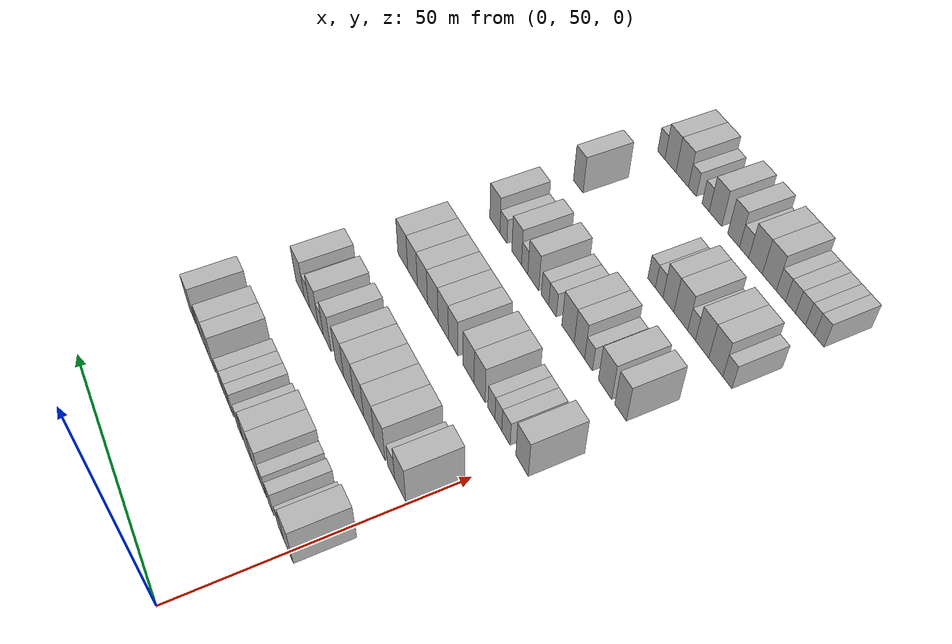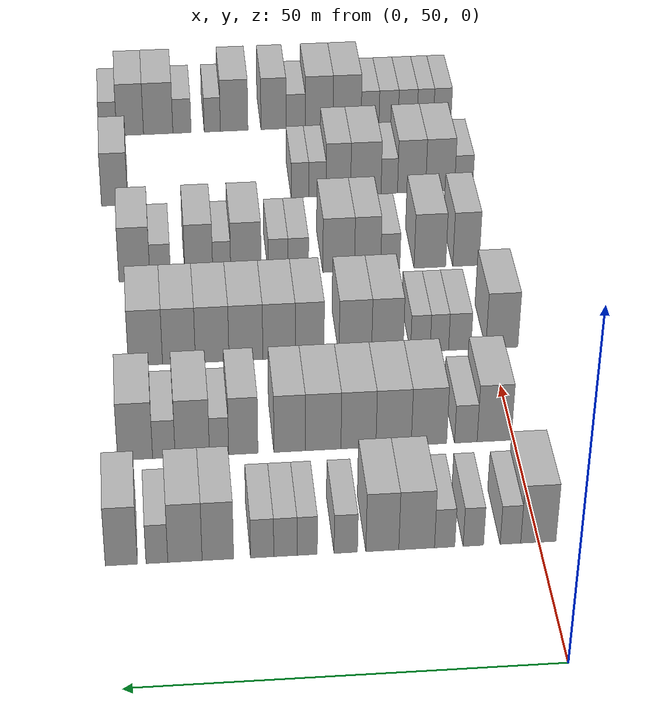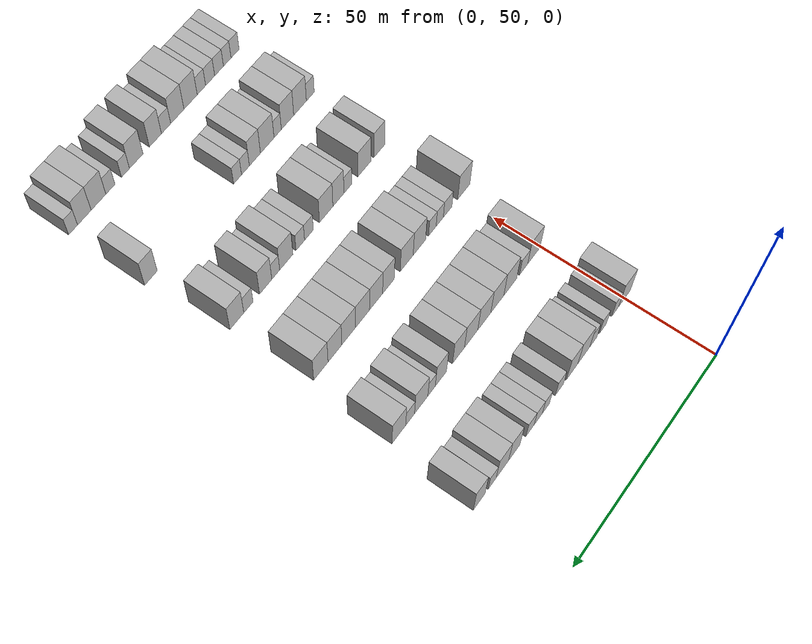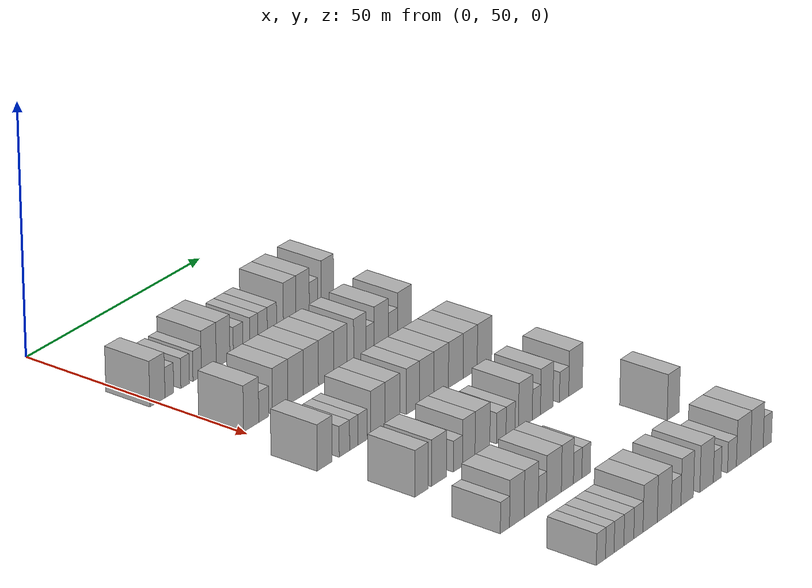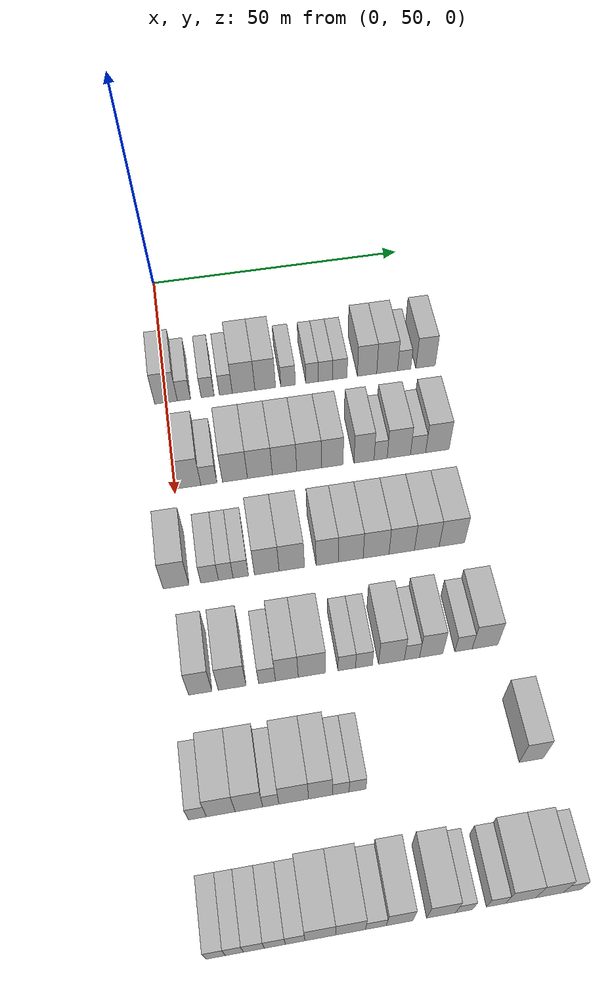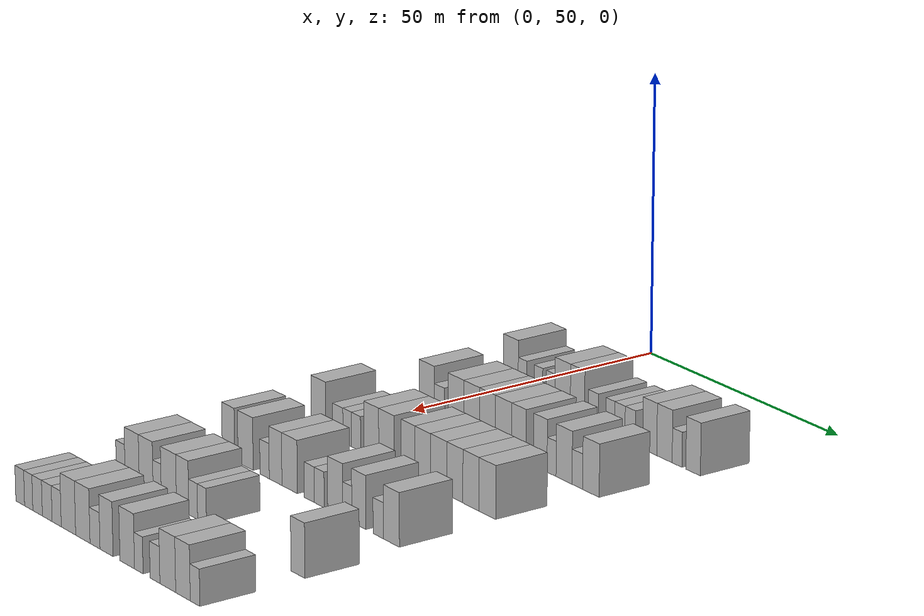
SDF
<sdf version="1.6">
 <world name="default">
  <model name="building_98">
   <static>1</static>
   <pose>25.0000 50.0883 0 0.000000 0.000000 0.000000</pose>
   <link name="link">
    <pose>0 0 4.50 0 0 0</pose>
    <collision name="collision"><geometry><box><size>10.0000 4.2511 9.0000</size></box></geometry></collision>
    <visual name="visual">
     <cast_shadows>0</cast_shadows>
     <geometry><box><size>10.0000 4.2511 9.0000</size></box></geometry>
     <material>
      <script>
       <uri>model://HANNAS_wall/materials/scripts</uri>
       <uri>model://HANNAS_wall/materials/textures</uri>
       <name>vrc/HANNAS_wall</name>
      </script>
     </material>
    </visual>
   </link>
  </model>
  <model name="building_99">
   <static>1</static>
   <pose>25.0000 53.4505 0 0.000000 0.000000 0.000000</pose>
   <link name="link">
    <pose>0 0 3.00 0 0 0</pose>
    <collision name="collision"><geometry><box><size>10.0000 2.4731 6.0000</size></box></geometry></collision>
    <visual name="visual">
     <cast_shadows>0</cast_shadows>
     <geometry><box><size>10.0000 2.4731 6.0000</size></box></geometry>
     <material>
      <script>
       <uri>model://HANNAS_wall/materials/scripts</uri>
       <uri>model://HANNAS_wall/materials/textures</uri>
       <name>vrc/HANNAS_wall</name>
      </script>
     </material>
    </visual>
   </link>
  </model>
  <model name="building_100">
   <static>1</static>
   <pose>25.0000 57.9115 0 0.000000 0.000000 0.000000</pose>
   <link name="link">
    <pose>0 0 3.00 0 0 0</pose>
    <collision name="collision"><geometry><box><size>10.0000 2.4489 6.0000</size></box></geometry></collision>
    <visual name="visual">
     <cast_shadows>0</cast_shadows>
     <geometry><box><size>10.0000 2.4489 6.0000</size></box></geometry>
     <material>
      <script>
       <uri>model://HANNAS_wall/materials/scripts</uri>
       <uri>model://HANNAS_wall/materials/textures</uri>
       <name>vrc/HANNAS_wall</name>
      </script>
     </material>
    </visual>
   </link>
  </model>
  <model name="building_101">
   <static>1</static>
   <pose>25.0000 61.3534 0 0.000000 0.000000 0.000000</pose>
   <link name="link">
    <pose>0 0 3.00 0 0 0</pose>
    <collision name="collision"><geometry><box><size>10.0000 2.4351 6.0000</size></box></geometry></collision>
    <visual name="visual">
     <cast_shadows>0</cast_shadows>
     <geometry><box><size>10.0000 2.4351 6.0000</size></box></geometry>
     <material>
      <script>
       <uri>model://HANNAS_wall/materials/scripts</uri>
       <uri>model://HANNAS_wall/materials/textures</uri>
       <name>vrc/HANNAS_wall</name>
      </script>
     </material>
    </visual>
   </link>
  </model>
  <model name="building_102">
   <static>1</static>
   <pose>25.0000 64.7092 0 0.000000 0.000000 0.000000</pose>
   <link name="link">
    <pose>0 0 4.50 0 0 0</pose>
    <collision name="collision"><geometry><box><size>10.0000 4.2765 9.0000</size></box></geometry></collision>
    <visual name="visual">
     <cast_shadows>0</cast_shadows>
     <geometry><box><size>10.0000 4.2765 9.0000</size></box></geometry>
     <material>
      <script>
       <uri>model://HANNAS_wall/materials/scripts</uri>
       <uri>model://HANNAS_wall/materials/textures</uri>
       <name>vrc/HANNAS_wall</name>
      </script>
     </material>
    </visual>
   </link>
  </model>
  <model name="building_103">
   <static>1</static>
   <pose>25.0000 68.8168 0 0.000000 0.000000 0.000000</pose>
   <link name="link">
    <pose>0 0 4.50 0 0 0</pose>
    <collision name="collision"><geometry><box><size>10.0000 3.9386 9.0000</size></box></geometry></collision>
    <visual name="visual">
     <cast_shadows>0</cast_shadows>
     <geometry><box><size>10.0000 3.9386 9.0000</size></box></geometry>
     <material>
      <script>
       <uri>model://HANNAS_wall/materials/scripts</uri>
       <uri>model://HANNAS_wall/materials/textures</uri>
       <name>vrc/HANNAS_wall</name>
      </script>
     </material>
    </visual>
   </link>
  </model>
  <model name="building_104">
   <static>1</static>
   <pose>25.0000 73.1837 0 0.000000 0.000000 0.000000</pose>
   <link name="link">
    <pose>0 0 3.00 0 0 0</pose>
    <collision name="collision"><geometry><box><size>10.0000 2.7952 6.0000</size></box></geometry></collision>
    <visual name="visual">
     <cast_shadows>0</cast_shadows>
     <geometry><box><size>10.0000 2.7952 6.0000</size></box></geometry>
     <material>
      <script>
       <uri>model://HANNAS_wall/materials/scripts</uri>
       <uri>model://HANNAS_wall/materials/textures</uri>
       <name>vrc/HANNAS_wall</name>
      </script>
     </material>
    </visual>
   </link>
  </model>
  <model name="building_105">
   <static>1</static>
   <pose>25.0000 77.7830 0 0.000000 0.000000 0.000000</pose>
   <link name="link">
    <pose>0 0 3.00 0 0 0</pose>
    <collision name="collision"><geometry><box><size>10.0000 2.4035 6.0000</size></box></geometry></collision>
    <visual name="visual">
     <cast_shadows>0</cast_shadows>
     <geometry><box><size>10.0000 2.4035 6.0000</size></box></geometry>
     <material>
      <script>
       <uri>model://HANNAS_wall/materials/scripts</uri>
       <uri>model://HANNAS_wall/materials/textures</uri>
       <name>vrc/HANNAS_wall</name>
      </script>
     </material>
    </visual>
   </link>
  </model>
  <model name="building_106">
   <static>1</static>
   <pose>25.0000 80.3705 0 0.000000 0.000000 0.000000</pose>
   <link name="link">
    <pose>0 0 3.00 0 0 0</pose>
    <collision name="collision"><geometry><box><size>10.0000 2.7715 6.0000</size></box></geometry></collision>
    <visual name="visual">
     <cast_shadows>0</cast_shadows>
     <geometry><box><size>10.0000 2.7715 6.0000</size></box></geometry>
     <material>
      <script>
       <uri>model://HANNAS_wall/materials/scripts</uri>
       <uri>model://HANNAS_wall/materials/textures</uri>
       <name>vrc/HANNAS_wall</name>
      </script>
     </material>
    </visual>
   </link>
  </model>
  <model name="building_107">
   <static>1</static>
   <pose>25.0000 83.1354 0 0.000000 0.000000 0.000000</pose>
   <link name="link">
    <pose>0 0 3.00 0 0 0</pose>
    <collision name="collision"><geometry><box><size>10.0000 2.7583 6.0000</size></box></geometry></collision>
    <visual name="visual">
     <cast_shadows>0</cast_shadows>
     <geometry><box><size>10.0000 2.7583 6.0000</size></box></geometry>
     <material>
      <script>
       <uri>model://HANNAS_wall/materials/scripts</uri>
       <uri>model://HANNAS_wall/materials/textures</uri>
       <name>vrc/HANNAS_wall</name>
      </script>
     </material>
    </visual>
   </link>
  </model>
  <model name="building_108">
   <static>1</static>
   <pose>25.0000 88.3816 0 0.000000 0.000000 0.000000</pose>
   <link name="link">
    <pose>0 0 4.50 0 0 0</pose>
    <collision name="collision"><geometry><box><size>10.0000 3.7342 9.0000</size></box></geometry></collision>
    <visual name="visual">
     <cast_shadows>0</cast_shadows>
     <geometry><box><size>10.0000 3.7342 9.0000</size></box></geometry>
     <material>
      <script>
       <uri>model://HANNAS_wall/materials/scripts</uri>
       <uri>model://HANNAS_wall/materials/textures</uri>
       <name>vrc/HANNAS_wall</name>
      </script>
     </material>
    </visual>
   </link>
  </model>
  <model name="building_109">
   <static>1</static>
   <pose>25.0000 92.2741 0 0.000000 0.000000 0.000000</pose>
   <link name="link">
    <pose>0 0 4.50 0 0 0</pose>
    <collision name="collision"><geometry><box><size>10.0000 4.0507 9.0000</size></box></geometry></collision>
    <visual name="visual">
     <cast_shadows>0</cast_shadows>
     <geometry><box><size>10.0000 4.0507 9.0000</size></box></geometry>
     <material>
      <script>
       <uri>model://HANNAS_wall/materials/scripts</uri>
       <uri>model://HANNAS_wall/materials/textures</uri>
       <name>vrc/HANNAS_wall</name>
      </script>
     </material>
    </visual>
   </link>
  </model>
  <model name="building_110">
   <static>1</static>
   <pose>25.0000 95.5857 0 0.000000 0.000000 0.000000</pose>
   <link name="link">
    <pose>0 0 3.00 0 0 0</pose>
    <collision name="collision"><geometry><box><size>10.0000 2.5726 6.0000</size></box></geometry></collision>
    <visual name="visual">
     <cast_shadows>0</cast_shadows>
     <geometry><box><size>10.0000 2.5726 6.0000</size></box></geometry>
     <material>
      <script>
       <uri>model://HANNAS_wall/materials/scripts</uri>
       <uri>model://HANNAS_wall/materials/textures</uri>
       <name>vrc/HANNAS_wall</name>
      </script>
     </material>
    </visual>
   </link>
  </model>
  <model name="building_111">
   <static>1</static>
   <pose>25.0000 99.7679 0 0.000000 0.000000 0.000000</pose>
   <link name="link">
    <pose>0 0 4.50 0 0 0</pose>
    <collision name="collision"><geometry><box><size>10.0000 3.7919 9.0000</size></box></geometry></collision>
    <visual name="visual">
     <cast_shadows>0</cast_shadows>
     <geometry><box><size>10.0000 3.7919 9.0000</size></box></geometry>
     <material>
      <script>
       <uri>model://HANNAS_wall/materials/scripts</uri>
       <uri>model://HANNAS_wall/materials/textures</uri>
       <name>vrc/HANNAS_wall</name>
      </script>
     </material>
    </visual>
   </link>
  </model>
  <model name="building_271">
   <static>1</static>
   <pose>44.0000 52.5273 0 0.000000 0.000000 0.000000</pose>
   <link name="link">
    <pose>0 0 4.50 0 0 0</pose>
    <collision name="collision"><geometry><box><size>10.0000 4.3401 9.0000</size></box></geometry></collision>
    <visual name="visual">
     <cast_shadows>0</cast_shadows>
     <geometry><box><size>10.0000 4.3401 9.0000</size></box></geometry>
     <material>
      <script>
       <uri>model://HANNAS_wall/materials/scripts</uri>
       <uri>model://HANNAS_wall/materials/textures</uri>
       <name>vrc/HANNAS_wall</name>
      </script>
     </material>
    </visual>
   </link>
  </model>
  <model name="building_272">
   <static>1</static>
   <pose>44.0000 56.1313 0 0.000000 0.000000 0.000000</pose>
   <link name="link">
    <pose>0 0 3.00 0 0 0</pose>
    <collision name="collision"><geometry><box><size>10.0000 2.8679 6.0000</size></box></geometry></collision>
    <visual name="visual">
     <cast_shadows>0</cast_shadows>
     <geometry><box><size>10.0000 2.8679 6.0000</size></box></geometry>
     <material>
      <script>
       <uri>model://HANNAS_wall/materials/scripts</uri>
       <uri>model://HANNAS_wall/materials/textures</uri>
       <name>vrc/HANNAS_wall</name>
      </script>
     </material>
    </visual>
   </link>
  </model>
  <model name="building_273">
   <static>1</static>
   <pose>44.0000 60.8100 0 0.000000 0.000000 0.000000</pose>
   <link name="link">
    <pose>0 0 4.50 0 0 0</pose>
    <collision name="collision"><geometry><box><size>10.0000 4.4895 9.0000</size></box></geometry></collision>
    <visual name="visual">
     <cast_shadows>0</cast_shadows>
     <geometry><box><size>10.0000 4.4895 9.0000</size></box></geometry>
     <material>
      <script>
       <uri>model://HANNAS_wall/materials/scripts</uri>
       <uri>model://HANNAS_wall/materials/textures</uri>
       <name>vrc/HANNAS_wall</name>
      </script>
     </material>
    </visual>
   </link>
  </model>
  <model name="building_274">
   <static>1</static>
   <pose>44.0000 65.2912 0 0.000000 0.000000 0.000000</pose>
   <link name="link">
    <pose>0 0 4.50 0 0 0</pose>
    <collision name="collision"><geometry><box><size>10.0000 4.4730 9.0000</size></box></geometry></collision>
    <visual name="visual">
     <cast_shadows>0</cast_shadows>
     <geometry><box><size>10.0000 4.4730 9.0000</size></box></geometry>
     <material>
      <script>
       <uri>model://HANNAS_wall/materials/scripts</uri>
       <uri>model://HANNAS_wall/materials/textures</uri>
       <name>vrc/HANNAS_wall</name>
      </script>
     </material>
    </visual>
   </link>
  </model>
  <model name="building_275">
   <static>1</static>
   <pose>44.0000 69.7362 0 0.000000 0.000000 0.000000</pose>
   <link name="link">
    <pose>0 0 4.50 0 0 0</pose>
    <collision name="collision"><geometry><box><size>10.0000 4.4169 9.0000</size></box></geometry></collision>
    <visual name="visual">
     <cast_shadows>0</cast_shadows>
     <geometry><box><size>10.0000 4.4169 9.0000</size></box></geometry>
     <material>
      <script>
       <uri>model://HANNAS_wall/materials/scripts</uri>
       <uri>model://HANNAS_wall/materials/textures</uri>
       <name>vrc/HANNAS_wall</name>
      </script>
     </material>
    </visual>
   </link>
  </model>
  <model name="building_276">
   <static>1</static>
   <pose>44.0000 74.1919 0 0.000000 0.000000 0.000000</pose>
   <link name="link">
    <pose>0 0 4.50 0 0 0</pose>
    <collision name="collision"><geometry><box><size>10.0000 4.4945 9.0000</size></box></geometry></collision>
    <visual name="visual">
     <cast_shadows>0</cast_shadows>
     <geometry><box><size>10.0000 4.4945 9.0000</size></box></geometry>
     <material>
      <script>
       <uri>model://HANNAS_wall/materials/scripts</uri>
       <uri>model://HANNAS_wall/materials/textures</uri>
       <name>vrc/HANNAS_wall</name>
      </script>
     </material>
    </visual>
   </link>
  </model>
  <model name="building_277">
   <static>1</static>
   <pose>44.0000 78.4128 0 0.000000 0.000000 0.000000</pose>
   <link name="link">
    <pose>0 0 4.50 0 0 0</pose>
    <collision name="collision"><geometry><box><size>10.0000 3.9474 9.0000</size></box></geometry></collision>
    <visual name="visual">
     <cast_shadows>0</cast_shadows>
     <geometry><box><size>10.0000 3.9474 9.0000</size></box></geometry>
     <material>
      <script>
       <uri>model://HANNAS_wall/materials/scripts</uri>
       <uri>model://HANNAS_wall/materials/textures</uri>
       <name>vrc/HANNAS_wall</name>
      </script>
     </material>
    </visual>
   </link>
  </model>
  <model name="building_278">
   <static>1</static>
   <pose>44.0000 84.2232 0 0.000000 0.000000 0.000000</pose>
   <link name="link">
    <pose>0 0 4.50 0 0 0</pose>
    <collision name="collision"><geometry><box><size>10.0000 3.6733 9.0000</size></box></geometry></collision>
    <visual name="visual">
     <cast_shadows>0</cast_shadows>
     <geometry><box><size>10.0000 3.6733 9.0000</size></box></geometry>
     <material>
      <script>
       <uri>model://HANNAS_wall/materials/scripts</uri>
       <uri>model://HANNAS_wall/materials/textures</uri>
       <name>vrc/HANNAS_wall</name>
      </script>
     </material>
    </visual>
   </link>
  </model>
  <model name="building_279">
   <static>1</static>
   <pose>44.0000 87.2661 0 0.000000 0.000000 0.000000</pose>
   <link name="link">
    <pose>0 0 3.00 0 0 0</pose>
    <collision name="collision"><geometry><box><size>10.0000 2.4124 6.0000</size></box></geometry></collision>
    <visual name="visual">
     <cast_shadows>0</cast_shadows>
     <geometry><box><size>10.0000 2.4124 6.0000</size></box></geometry>
     <material>
      <script>
       <uri>model://HANNAS_wall/materials/scripts</uri>
       <uri>model://HANNAS_wall/materials/textures</uri>
       <name>vrc/HANNAS_wall</name>
      </script>
     </material>
    </visual>
   </link>
  </model>
  <model name="building_280">
   <static>1</static>
   <pose>44.0000 90.6189 0 0.000000 0.000000 0.000000</pose>
   <link name="link">
    <pose>0 0 4.50 0 0 0</pose>
    <collision name="collision"><geometry><box><size>10.0000 4.2932 9.0000</size></box></geometry></collision>
    <visual name="visual">
     <cast_shadows>0</cast_shadows>
     <geometry><box><size>10.0000 4.2932 9.0000</size></box></geometry>
     <material>
      <script>
       <uri>model://HANNAS_wall/materials/scripts</uri>
       <uri>model://HANNAS_wall/materials/textures</uri>
       <name>vrc/HANNAS_wall</name>
      </script>
     </material>
    </visual>
   </link>
  </model>
  <model name="building_281">
   <static>1</static>
   <pose>44.0000 94.1695 0 0.000000 0.000000 0.000000</pose>
   <link name="link">
    <pose>0 0 3.00 0 0 0</pose>
    <collision name="collision"><geometry><box><size>10.0000 2.8082 6.0000</size></box></geometry></collision>
    <visual name="visual">
     <cast_shadows>0</cast_shadows>
     <geometry><box><size>10.0000 2.8082 6.0000</size></box></geometry>
     <material>
      <script>
       <uri>model://HANNAS_wall/materials/scripts</uri>
       <uri>model://HANNAS_wall/materials/textures</uri>
       <name>vrc/HANNAS_wall</name>
      </script>
     </material>
    </visual>
   </link>
  </model>
  <model name="building_282">
   <static>1</static>
   <pose>44.0000 97.7533 0 0.000000 0.000000 0.000000</pose>
   <link name="link">
    <pose>0 0 4.50 0 0 0</pose>
    <collision name="collision"><geometry><box><size>10.0000 4.3592 9.0000</size></box></geometry></collision>
    <visual name="visual">
     <cast_shadows>0</cast_shadows>
     <geometry><box><size>10.0000 4.3592 9.0000</size></box></geometry>
     <material>
      <script>
       <uri>model://HANNAS_wall/materials/scripts</uri>
       <uri>model://HANNAS_wall/materials/textures</uri>
       <name>vrc/HANNAS_wall</name>
      </script>
     </material>
    </visual>
   </link>
  </model>
  <model name="building_442">
   <static>1</static>
   <pose>63.0000 48.6153 0 0.000000 0.000000 0.000000</pose>
   <link name="link">
    <pose>0 0 4.50 0 0 0</pose>
    <collision name="collision"><geometry><box><size>10.0000 4.3028 9.0000</size></box></geometry></collision>
    <visual name="visual">
     <cast_shadows>0</cast_shadows>
     <geometry><box><size>10.0000 4.3028 9.0000</size></box></geometry>
     <material>
      <script>
       <uri>model://HANNAS_wall/materials/scripts</uri>
       <uri>model://HANNAS_wall/materials/textures</uri>
       <name>vrc/HANNAS_wall</name>
      </script>
     </material>
    </visual>
   </link>
  </model>
  <model name="building_443">
   <static>1</static>
   <pose>63.0000 54.2634 0 0.000000 0.000000 0.000000</pose>
   <link name="link">
    <pose>0 0 3.00 0 0 0</pose>
    <collision name="collision"><geometry><box><size>10.0000 2.9934 6.0000</size></box></geometry></collision>
    <visual name="visual">
     <cast_shadows>0</cast_shadows>
     <geometry><box><size>10.0000 2.9934 6.0000</size></box></geometry>
     <material>
      <script>
       <uri>model://HANNAS_wall/materials/scripts</uri>
       <uri>model://HANNAS_wall/materials/textures</uri>
       <name>vrc/HANNAS_wall</name>
      </script>
     </material>
    </visual>
   </link>
  </model>
  <model name="building_444">
   <static>1</static>
   <pose>63.0000 56.9931 0 0.000000 0.000000 0.000000</pose>
   <link name="link">
    <pose>0 0 3.00 0 0 0</pose>
    <collision name="collision"><geometry><box><size>10.0000 2.4660 6.0000</size></box></geometry></collision>
    <visual name="visual">
     <cast_shadows>0</cast_shadows>
     <geometry><box><size>10.0000 2.4660 6.0000</size></box></geometry>
     <material>
      <script>
       <uri>model://HANNAS_wall/materials/scripts</uri>
       <uri>model://HANNAS_wall/materials/textures</uri>
       <name>vrc/HANNAS_wall</name>
      </script>
     </material>
    </visual>
   </link>
  </model>
  <model name="building_445">
   <static>1</static>
   <pose>63.0000 59.5337 0 0.000000 0.000000 0.000000</pose>
   <link name="link">
    <pose>0 0 3.00 0 0 0</pose>
    <collision name="collision"><geometry><box><size>10.0000 2.6150 6.0000</size></box></geometry></collision>
    <visual name="visual">
     <cast_shadows>0</cast_shadows>
     <geometry><box><size>10.0000 2.6150 6.0000</size></box></geometry>
     <material>
      <script>
       <uri>model://HANNAS_wall/materials/scripts</uri>
       <uri>model://HANNAS_wall/materials/textures</uri>
       <name>vrc/HANNAS_wall</name>
      </script>
     </material>
    </visual>
   </link>
  </model>
  <model name="building_446">
   <static>1</static>
   <pose>63.0000 63.9450 0 0.000000 0.000000 0.000000</pose>
   <link name="link">
    <pose>0 0 4.50 0 0 0</pose>
    <collision name="collision"><geometry><box><size>10.0000 4.2076 9.0000</size></box></geometry></collision>
    <visual name="visual">
     <cast_shadows>0</cast_shadows>
     <geometry><box><size>10.0000 4.2076 9.0000</size></box></geometry>
     <material>
      <script>
       <uri>model://HANNAS_wall/materials/scripts</uri>
       <uri>model://HANNAS_wall/materials/textures</uri>
       <name>vrc/HANNAS_wall</name>
      </script>
     </material>
    </visual>
   </link>
  </model>
  <model name="building_447">
   <static>1</static>
   <pose>63.0000 68.2163 0 0.000000 0.000000 0.000000</pose>
   <link name="link">
    <pose>0 0 4.50 0 0 0</pose>
    <collision name="collision"><geometry><box><size>10.0000 4.3351 9.0000</size></box></geometry></collision>
    <visual name="visual">
     <cast_shadows>0</cast_shadows>
     <geometry><box><size>10.0000 4.3351 9.0000</size></box></geometry>
     <material>
      <script>
       <uri>model://HANNAS_wall/materials/scripts</uri>
       <uri>model://HANNAS_wall/materials/textures</uri>
       <name>vrc/HANNAS_wall</name>
      </script>
     </material>
    </visual>
   </link>
  </model>
  <model name="building_448">
   <static>1</static>
   <pose>63.0000 74.2968 0 0.000000 0.000000 0.000000</pose>
   <link name="link">
    <pose>0 0 4.50 0 0 0</pose>
    <collision name="collision"><geometry><box><size>10.0000 3.8258 9.0000</size></box></geometry></collision>
    <visual name="visual">
     <cast_shadows>0</cast_shadows>
     <geometry><box><size>10.0000 3.8258 9.0000</size></box></geometry>
     <material>
      <script>
       <uri>model://HANNAS_wall/materials/scripts</uri>
       <uri>model://HANNAS_wall/materials/textures</uri>
       <name>vrc/HANNAS_wall</name>
      </script>
     </material>
    </visual>
   </link>
  </model>
  <model name="building_449">
   <static>1</static>
   <pose>63.0000 78.3547 0 0.000000 0.000000 0.000000</pose>
   <link name="link">
    <pose>0 0 4.50 0 0 0</pose>
    <collision name="collision"><geometry><box><size>10.0000 4.2901 9.0000</size></box></geometry></collision>
    <visual name="visual">
     <cast_shadows>0</cast_shadows>
     <geometry><box><size>10.0000 4.2901 9.0000</size></box></geometry>
     <material>
      <script>
       <uri>model://HANNAS_wall/materials/scripts</uri>
       <uri>model://HANNAS_wall/materials/textures</uri>
       <name>vrc/HANNAS_wall</name>
      </script>
     </material>
    </visual>
   </link>
  </model>
  <model name="building_450">
   <static>1</static>
   <pose>63.0000 82.7400 0 0.000000 0.000000 0.000000</pose>
   <link name="link">
    <pose>0 0 4.50 0 0 0</pose>
    <collision name="collision"><geometry><box><size>10.0000 4.4804 9.0000</size></box></geometry></collision>
    <visual name="visual">
     <cast_shadows>0</cast_shadows>
     <geometry><box><size>10.0000 4.4804 9.0000</size></box></geometry>
     <material>
      <script>
       <uri>model://HANNAS_wall/materials/scripts</uri>
       <uri>model://HANNAS_wall/materials/textures</uri>
       <name>vrc/HANNAS_wall</name>
      </script>
     </material>
    </visual>
   </link>
  </model>
  <model name="building_451">
   <static>1</static>
   <pose>63.0000 87.1992 0 0.000000 0.000000 0.000000</pose>
   <link name="link">
    <pose>0 0 4.50 0 0 0</pose>
    <collision name="collision"><geometry><box><size>10.0000 4.4381 9.0000</size></box></geometry></collision>
    <visual name="visual">
     <cast_shadows>0</cast_shadows>
     <geometry><box><size>10.0000 4.4381 9.0000</size></box></geometry>
     <material>
      <script>
       <uri>model://HANNAS_wall/materials/scripts</uri>
       <uri>model://HANNAS_wall/materials/textures</uri>
       <name>vrc/HANNAS_wall</name>
      </script>
     </material>
    </visual>
   </link>
  </model>
  <model name="building_452">
   <static>1</static>
   <pose>63.0000 91.5831 0 0.000000 0.000000 0.000000</pose>
   <link name="link">
    <pose>0 0 4.50 0 0 0</pose>
    <collision name="collision"><geometry><box><size>10.0000 4.3296 9.0000</size></box></geometry></collision>
    <visual name="visual">
     <cast_shadows>0</cast_shadows>
     <geometry><box><size>10.0000 4.3296 9.0000</size></box></geometry>
     <material>
      <script>
       <uri>model://HANNAS_wall/materials/scripts</uri>
       <uri>model://HANNAS_wall/materials/textures</uri>
       <name>vrc/HANNAS_wall</name>
      </script>
     </material>
    </visual>
   </link>
  </model>
  <model name="building_453">
   <static>1</static>
   <pose>63.0000 95.9924 0 0.000000 0.000000 0.000000</pose>
   <link name="link">
    <pose>0 0 4.50 0 0 0</pose>
    <collision name="collision"><geometry><box><size>10.0000 4.4890 9.0000</size></box></geometry></collision>
    <visual name="visual">
     <cast_shadows>0</cast_shadows>
     <geometry><box><size>10.0000 4.4890 9.0000</size></box></geometry>
     <material>
      <script>
       <uri>model://HANNAS_wall/materials/scripts</uri>
       <uri>model://HANNAS_wall/materials/textures</uri>
       <name>vrc/HANNAS_wall</name>
      </script>
     </material>
    </visual>
   </link>
  </model>
  <model name="building_612">
   <static>1</static>
   <pose>82.0000 50.7572 0 0.000000 0.000000 0.000000</pose>
   <link name="link">
    <pose>0 0 4.50 0 0 0</pose>
    <collision name="collision"><geometry><box><size>10.0000 3.7016 9.0000</size></box></geometry></collision>
    <visual name="visual">
     <cast_shadows>0</cast_shadows>
     <geometry><box><size>10.0000 3.7016 9.0000</size></box></geometry>
     <material>
      <script>
       <uri>model://HANNAS_wall/materials/scripts</uri>
       <uri>model://HANNAS_wall/materials/textures</uri>
       <name>vrc/HANNAS_wall</name>
      </script>
     </material>
    </visual>
   </link>
  </model>
  <model name="building_613">
   <static>1</static>
   <pose>82.0000 55.8323 0 0.000000 0.000000 0.000000</pose>
   <link name="link">
    <pose>0 0 4.50 0 0 0</pose>
    <collision name="collision"><geometry><box><size>10.0000 4.4486 9.0000</size></box></geometry></collision>
    <visual name="visual">
     <cast_shadows>0</cast_shadows>
     <geometry><box><size>10.0000 4.4486 9.0000</size></box></geometry>
     <material>
      <script>
       <uri>model://HANNAS_wall/materials/scripts</uri>
       <uri>model://HANNAS_wall/materials/textures</uri>
       <name>vrc/HANNAS_wall</name>
      </script>
     </material>
    </visual>
   </link>
  </model>
  <model name="building_614">
   <static>1</static>
   <pose>82.0000 61.4044 0 0.000000 0.000000 0.000000</pose>
   <link name="link">
    <pose>0 0 3.00 0 0 0</pose>
    <collision name="collision"><geometry><box><size>10.0000 2.6955 6.0000</size></box></geometry></collision>
    <visual name="visual">
     <cast_shadows>0</cast_shadows>
     <geometry><box><size>10.0000 2.6955 6.0000</size></box></geometry>
     <material>
      <script>
       <uri>model://HANNAS_wall/materials/scripts</uri>
       <uri>model://HANNAS_wall/materials/textures</uri>
       <name>vrc/HANNAS_wall</name>
      </script>
     </material>
    </visual>
   </link>
  </model>
  <model name="building_615">
   <static>1</static>
   <pose>82.0000 64.5866 0 0.000000 0.000000 0.000000</pose>
   <link name="link">
    <pose>0 0 4.50 0 0 0</pose>
    <collision name="collision"><geometry><box><size>10.0000 3.6689 9.0000</size></box></geometry></collision>
    <visual name="visual">
     <cast_shadows>0</cast_shadows>
     <geometry><box><size>10.0000 3.6689 9.0000</size></box></geometry>
     <material>
      <script>
       <uri>model://HANNAS_wall/materials/scripts</uri>
       <uri>model://HANNAS_wall/materials/textures</uri>
       <name>vrc/HANNAS_wall</name>
      </script>
     </material>
    </visual>
   </link>
  </model>
  <model name="building_616">
   <static>1</static>
   <pose>82.0000 68.6369 0 0.000000 0.000000 0.000000</pose>
   <link name="link">
    <pose>0 0 4.50 0 0 0</pose>
    <collision name="collision"><geometry><box><size>10.0000 4.4317 9.0000</size></box></geometry></collision>
    <visual name="visual">
     <cast_shadows>0</cast_shadows>
     <geometry><box><size>10.0000 4.4317 9.0000</size></box></geometry>
     <material>
      <script>
       <uri>model://HANNAS_wall/materials/scripts</uri>
       <uri>model://HANNAS_wall/materials/textures</uri>
       <name>vrc/HANNAS_wall</name>
      </script>
     </material>
    </visual>
   </link>
  </model>
  <model name="building_617">
   <static>1</static>
   <pose>82.0000 74.2789 0 0.000000 0.000000 0.000000</pose>
   <link name="link">
    <pose>0 0 3.00 0 0 0</pose>
    <collision name="collision"><geometry><box><size>10.0000 2.8522 6.0000</size></box></geometry></collision>
    <visual name="visual">
     <cast_shadows>0</cast_shadows>
     <geometry><box><size>10.0000 2.8522 6.0000</size></box></geometry>
     <material>
      <script>
       <uri>model://HANNAS_wall/materials/scripts</uri>
       <uri>model://HANNAS_wall/materials/textures</uri>
       <name>vrc/HANNAS_wall</name>
      </script>
     </material>
    </visual>
   </link>
  </model>
  <model name="building_618">
   <static>1</static>
   <pose>82.0000 77.0791 0 0.000000 0.000000 0.000000</pose>
   <link name="link">
    <pose>0 0 3.00 0 0 0</pose>
    <collision name="collision"><geometry><box><size>10.0000 2.7483 6.0000</size></box></geometry></collision>
    <visual name="visual">
     <cast_shadows>0</cast_shadows>
     <geometry><box><size>10.0000 2.7483 6.0000</size></box></geometry>
     <material>
      <script>
       <uri>model://HANNAS_wall/materials/scripts</uri>
       <uri>model://HANNAS_wall/materials/textures</uri>
       <name>vrc/HANNAS_wall</name>
      </script>
     </material>
    </visual>
   </link>
  </model>
  <model name="building_619">
   <static>1</static>
   <pose>82.0000 81.5696 0 0.000000 0.000000 0.000000</pose>
   <link name="link">
    <pose>0 0 4.50 0 0 0</pose>
    <collision name="collision"><geometry><box><size>10.0000 4.2327 9.0000</size></box></geometry></collision>
    <visual name="visual">
     <cast_shadows>0</cast_shadows>
     <geometry><box><size>10.0000 4.2327 9.0000</size></box></geometry>
     <material>
      <script>
       <uri>model://HANNAS_wall/materials/scripts</uri>
       <uri>model://HANNAS_wall/materials/textures</uri>
       <name>vrc/HANNAS_wall</name>
      </script>
     </material>
    </visual>
   </link>
  </model>
  <model name="building_620">
   <static>1</static>
   <pose>82.0000 84.9345 0 0.000000 0.000000 0.000000</pose>
   <link name="link">
    <pose>0 0 3.00 0 0 0</pose>
    <collision name="collision"><geometry><box><size>10.0000 2.4970 6.0000</size></box></geometry></collision>
    <visual name="visual">
     <cast_shadows>0</cast_shadows>
     <geometry><box><size>10.0000 2.4970 6.0000</size></box></geometry>
     <material>
      <script>
       <uri>model://HANNAS_wall/materials/scripts</uri>
       <uri>model://HANNAS_wall/materials/textures</uri>
       <name>vrc/HANNAS_wall</name>
      </script>
     </material>
    </visual>
   </link>
  </model>
  <model name="building_621">
   <static>1</static>
   <pose>82.0000 88.1088 0 0.000000 0.000000 0.000000</pose>
   <link name="link">
    <pose>0 0 4.50 0 0 0</pose>
    <collision name="collision"><geometry><box><size>10.0000 3.8517 9.0000</size></box></geometry></collision>
    <visual name="visual">
     <cast_shadows>0</cast_shadows>
     <geometry><box><size>10.0000 3.8517 9.0000</size></box></geometry>
     <material>
      <script>
       <uri>model://HANNAS_wall/materials/scripts</uri>
       <uri>model://HANNAS_wall/materials/textures</uri>
       <name>vrc/HANNAS_wall</name>
      </script>
     </material>
    </visual>
   </link>
  </model>
  <model name="building_622">
   <static>1</static>
   <pose>82.0000 93.4714 0 0.000000 0.000000 0.000000</pose>
   <link name="link">
    <pose>0 0 3.00 0 0 0</pose>
    <collision name="collision"><geometry><box><size>10.0000 2.8735 6.0000</size></box></geometry></collision>
    <visual name="visual">
     <cast_shadows>0</cast_shadows>
     <geometry><box><size>10.0000 2.8735 6.0000</size></box></geometry>
     <material>
      <script>
       <uri>model://HANNAS_wall/materials/scripts</uri>
       <uri>model://HANNAS_wall/materials/textures</uri>
       <name>vrc/HANNAS_wall</name>
      </script>
     </material>
    </visual>
   </link>
  </model>
  <model name="building_623">
   <static>1</static>
   <pose>82.0000 97.0484 0 0.000000 0.000000 0.000000</pose>
   <link name="link">
    <pose>0 0 4.50 0 0 0</pose>
    <collision name="collision"><geometry><box><size>10.0000 4.2805 9.0000</size></box></geometry></collision>
    <visual name="visual">
     <cast_shadows>0</cast_shadows>
     <geometry><box><size>10.0000 4.2805 9.0000</size></box></geometry>
     <material>
      <script>
       <uri>model://HANNAS_wall/materials/scripts</uri>
       <uri>model://HANNAS_wall/materials/textures</uri>
       <name>vrc/HANNAS_wall</name>
      </script>
     </material>
    </visual>
   </link>
  </model>
  <model name="building_787">
   <static>1</static>
   <pose>101.0000 48.4157 0 0.000000 0.000000 0.000000</pose>
   <link name="link">
    <pose>0 0 3.00 0 0 0</pose>
    <collision name="collision"><geometry><box><size>10.0000 2.6827 6.0000</size></box></geometry></collision>
    <visual name="visual">
     <cast_shadows>0</cast_shadows>
     <geometry><box><size>10.0000 2.6827 6.0000</size></box></geometry>
     <material>
      <script>
       <uri>model://HANNAS_wall/materials/scripts</uri>
       <uri>model://HANNAS_wall/materials/textures</uri>
       <name>vrc/HANNAS_wall</name>
      </script>
     </material>
    </visual>
   </link>
  </model>
  <model name="building_788">
   <static>1</static>
   <pose>101.0000 51.8936 0 0.000000 0.000000 0.000000</pose>
   <link name="link">
    <pose>0 0 4.50 0 0 0</pose>
    <collision name="collision"><geometry><box><size>10.0000 4.2732 9.0000</size></box></geometry></collision>
    <visual name="visual">
     <cast_shadows>0</cast_shadows>
     <geometry><box><size>10.0000 4.2732 9.0000</size></box></geometry>
     <material>
      <script>
       <uri>model://HANNAS_wall/materials/scripts</uri>
       <uri>model://HANNAS_wall/materials/textures</uri>
       <name>vrc/HANNAS_wall</name>
      </script>
     </material>
    </visual>
   </link>
  </model>
  <model name="building_789">
   <static>1</static>
   <pose>101.0000 56.1054 0 0.000000 0.000000 0.000000</pose>
   <link name="link">
    <pose>0 0 4.50 0 0 0</pose>
    <collision name="collision"><geometry><box><size>10.0000 4.1505 9.0000</size></box></geometry></collision>
    <visual name="visual">
     <cast_shadows>0</cast_shadows>
     <geometry><box><size>10.0000 4.1505 9.0000</size></box></geometry>
     <material>
      <script>
       <uri>model://HANNAS_wall/materials/scripts</uri>
       <uri>model://HANNAS_wall/materials/textures</uri>
       <name>vrc/HANNAS_wall</name>
      </script>
     </material>
    </visual>
   </link>
  </model>
  <model name="building_790">
   <static>1</static>
   <pose>101.0000 59.3907 0 0.000000 0.000000 0.000000</pose>
   <link name="link">
    <pose>0 0 3.00 0 0 0</pose>
    <collision name="collision"><geometry><box><size>10.0000 2.4202 6.0000</size></box></geometry></collision>
    <visual name="visual">
     <cast_shadows>0</cast_shadows>
     <geometry><box><size>10.0000 2.4202 6.0000</size></box></geometry>
     <material>
      <script>
       <uri>model://HANNAS_wall/materials/scripts</uri>
       <uri>model://HANNAS_wall/materials/textures</uri>
       <name>vrc/HANNAS_wall</name>
      </script>
     </material>
    </visual>
   </link>
  </model>
  <model name="building_791">
   <static>1</static>
   <pose>101.0000 62.8400 0 0.000000 0.000000 0.000000</pose>
   <link name="link">
    <pose>0 0 4.50 0 0 0</pose>
    <collision name="collision"><geometry><box><size>10.0000 4.4784 9.0000</size></box></geometry></collision>
    <visual name="visual">
     <cast_shadows>0</cast_shadows>
     <geometry><box><size>10.0000 4.4784 9.0000</size></box></geometry>
     <material>
      <script>
       <uri>model://HANNAS_wall/materials/scripts</uri>
       <uri>model://HANNAS_wall/materials/textures</uri>
       <name>vrc/HANNAS_wall</name>
      </script>
     </material>
    </visual>
   </link>
  </model>
  <model name="building_792">
   <static>1</static>
   <pose>101.0000 66.8887 0 0.000000 0.000000 0.000000</pose>
   <link name="link">
    <pose>0 0 4.50 0 0 0</pose>
    <collision name="collision"><geometry><box><size>10.0000 3.6190 9.0000</size></box></geometry></collision>
    <visual name="visual">
     <cast_shadows>0</cast_shadows>
     <geometry><box><size>10.0000 3.6190 9.0000</size></box></geometry>
     <material>
      <script>
       <uri>model://HANNAS_wall/materials/scripts</uri>
       <uri>model://HANNAS_wall/materials/textures</uri>
       <name>vrc/HANNAS_wall</name>
      </script>
     </material>
    </visual>
   </link>
  </model>
  <model name="building_793">
   <static>1</static>
   <pose>101.0000 69.9673 0 0.000000 0.000000 0.000000</pose>
   <link name="link">
    <pose>0 0 3.00 0 0 0</pose>
    <collision name="collision"><geometry><box><size>10.0000 2.5383 6.0000</size></box></geometry></collision>
    <visual name="visual">
     <cast_shadows>0</cast_shadows>
     <geometry><box><size>10.0000 2.5383 6.0000</size></box></geometry>
     <material>
      <script>
       <uri>model://HANNAS_wall/materials/scripts</uri>
       <uri>model://HANNAS_wall/materials/textures</uri>
       <name>vrc/HANNAS_wall</name>
      </script>
     </material>
    </visual>
   </link>
  </model>
  <model name="building_794">
   <static>1</static>
   <pose>101.0000 72.5217 0 0.000000 0.000000 0.000000</pose>
   <link name="link">
    <pose>0 0 3.00 0 0 0</pose>
    <collision name="collision"><geometry><box><size>10.0000 2.5706 6.0000</size></box></geometry></collision>
    <visual name="visual">
     <cast_shadows>0</cast_shadows>
     <geometry><box><size>10.0000 2.5706 6.0000</size></box></geometry>
     <material>
      <script>
       <uri>model://HANNAS_wall/materials/scripts</uri>
       <uri>model://HANNAS_wall/materials/textures</uri>
       <name>vrc/HANNAS_wall</name>
      </script>
     </material>
    </visual>
   </link>
  </model>
  <model name="building_795">
   <static>1</static>
   <pose>101.0000 99.5240 0 0.000000 0.000000 0.000000</pose>
   <link name="link">
    <pose>0 0 4.50 0 0 0</pose>
    <collision name="collision"><geometry><box><size>10.0000 3.8113 9.0000</size></box></geometry></collision>
    <visual name="visual">
     <cast_shadows>0</cast_shadows>
     <geometry><box><size>10.0000 3.8113 9.0000</size></box></geometry>
     <material>
      <script>
       <uri>model://HANNAS_wall/materials/scripts</uri>
       <uri>model://HANNAS_wall/materials/textures</uri>
       <name>vrc/HANNAS_wall</name>
      </script>
     </material>
    </visual>
   </link>
  </model>
  <model name="building_956">
   <static>1</static>
   <pose>120.0000 49.0531 0 0.000000 0.000000 0.000000</pose>
   <link name="link">
    <pose>0 0 3.00 0 0 0</pose>
    <collision name="collision"><geometry><box><size>10.0000 2.7073 6.0000</size></box></geometry></collision>
    <visual name="visual">
     <cast_shadows>0</cast_shadows>
     <geometry><box><size>10.0000 2.7073 6.0000</size></box></geometry>
     <material>
      <script>
       <uri>model://HANNAS_wall/materials/scripts</uri>
       <uri>model://HANNAS_wall/materials/textures</uri>
       <name>vrc/HANNAS_wall</name>
      </script>
     </material>
    </visual>
   </link>
  </model>
  <model name="building_957">
   <static>1</static>
   <pose>120.0000 51.6713 0 0.000000 0.000000 0.000000</pose>
   <link name="link">
    <pose>0 0 3.00 0 0 0</pose>
    <collision name="collision"><geometry><box><size>10.0000 2.5291 6.0000</size></box></geometry></collision>
    <visual name="visual">
     <cast_shadows>0</cast_shadows>
     <geometry><box><size>10.0000 2.5291 6.0000</size></box></geometry>
     <material>
      <script>
       <uri>model://HANNAS_wall/materials/scripts</uri>
       <uri>model://HANNAS_wall/materials/textures</uri>
       <name>vrc/HANNAS_wall</name>
      </script>
     </material>
    </visual>
   </link>
  </model>
  <model name="building_958">
   <static>1</static>
   <pose>120.0000 54.3961 0 0.000000 0.000000 0.000000</pose>
   <link name="link">
    <pose>0 0 3.00 0 0 0</pose>
    <collision name="collision"><geometry><box><size>10.0000 2.9206 6.0000</size></box></geometry></collision>
    <visual name="visual">
     <cast_shadows>0</cast_shadows>
     <geometry><box><size>10.0000 2.9206 6.0000</size></box></geometry>
     <material>
      <script>
       <uri>model://HANNAS_wall/materials/scripts</uri>
       <uri>model://HANNAS_wall/materials/textures</uri>
       <name>vrc/HANNAS_wall</name>
      </script>
     </material>
    </visual>
   </link>
  </model>
  <model name="building_959">
   <static>1</static>
   <pose>120.0000 57.3411 0 0.000000 0.000000 0.000000</pose>
   <link name="link">
    <pose>0 0 3.00 0 0 0</pose>
    <collision name="collision"><geometry><box><size>10.0000 2.9694 6.0000</size></box></geometry></collision>
    <visual name="visual">
     <cast_shadows>0</cast_shadows>
     <geometry><box><size>10.0000 2.9694 6.0000</size></box></geometry>
     <material>
      <script>
       <uri>model://HANNAS_wall/materials/scripts</uri>
       <uri>model://HANNAS_wall/materials/textures</uri>
       <name>vrc/HANNAS_wall</name>
      </script>
     </material>
    </visual>
   </link>
  </model>
  <model name="building_960">
   <static>1</static>
   <pose>120.0000 60.2032 0 0.000000 0.000000 0.000000</pose>
   <link name="link">
    <pose>0 0 3.00 0 0 0</pose>
    <collision name="collision"><geometry><box><size>10.0000 2.7547 6.0000</size></box></geometry></collision>
    <visual name="visual">
     <cast_shadows>0</cast_shadows>
     <geometry><box><size>10.0000 2.7547 6.0000</size></box></geometry>
     <material>
      <script>
       <uri>model://HANNAS_wall/materials/scripts</uri>
       <uri>model://HANNAS_wall/materials/textures</uri>
       <name>vrc/HANNAS_wall</name>
      </script>
     </material>
    </visual>
   </link>
  </model>
  <model name="building_961">
   <static>1</static>
   <pose>120.0000 63.7399 0 0.000000 0.000000 0.000000</pose>
   <link name="link">
    <pose>0 0 4.50 0 0 0</pose>
    <collision name="collision"><geometry><box><size>10.0000 4.3187 9.0000</size></box></geometry></collision>
    <visual name="visual">
     <cast_shadows>0</cast_shadows>
     <geometry><box><size>10.0000 4.3187 9.0000</size></box></geometry>
     <material>
      <script>
       <uri>model://HANNAS_wall/materials/scripts</uri>
       <uri>model://HANNAS_wall/materials/textures</uri>
       <name>vrc/HANNAS_wall</name>
      </script>
     </material>
    </visual>
   </link>
  </model>
  <model name="building_962">
   <static>1</static>
   <pose>120.0000 68.0336 0 0.000000 0.000000 0.000000</pose>
   <link name="link">
    <pose>0 0 4.50 0 0 0</pose>
    <collision name="collision"><geometry><box><size>10.0000 4.2687 9.0000</size></box></geometry></collision>
    <visual name="visual">
     <cast_shadows>0</cast_shadows>
     <geometry><box><size>10.0000 4.2687 9.0000</size></box></geometry>
     <material>
      <script>
       <uri>model://HANNAS_wall/materials/scripts</uri>
       <uri>model://HANNAS_wall/materials/textures</uri>
       <name>vrc/HANNAS_wall</name>
      </script>
     </material>
    </visual>
   </link>
  </model>
  <model name="building_963">
   <static>1</static>
   <pose>120.0000 71.6455 0 0.000000 0.000000 0.000000</pose>
   <link name="link">
    <pose>0 0 3.00 0 0 0</pose>
    <collision name="collision"><geometry><box><size>10.0000 2.9549 6.0000</size></box></geometry></collision>
    <visual name="visual">
     <cast_shadows>0</cast_shadows>
     <geometry><box><size>10.0000 2.9549 6.0000</size></box></geometry>
     <material>
      <script>
       <uri>model://HANNAS_wall/materials/scripts</uri>
       <uri>model://HANNAS_wall/materials/textures</uri>
       <name>vrc/HANNAS_wall</name>
      </script>
     </material>
    </visual>
   </link>
  </model>
  <model name="building_964">
   <static>1</static>
   <pose>120.0000 75.0380 0 0.000000 0.000000 0.000000</pose>
   <link name="link">
    <pose>0 0 4.50 0 0 0</pose>
    <collision name="collision"><geometry><box><size>10.0000 3.8301 9.0000</size></box></geometry></collision>
    <visual name="visual">
     <cast_shadows>0</cast_shadows>
     <geometry><box><size>10.0000 3.8301 9.0000</size></box></geometry>
     <material>
      <script>
       <uri>model://HANNAS_wall/materials/scripts</uri>
       <uri>model://HANNAS_wall/materials/textures</uri>
       <name>vrc/HANNAS_wall</name>
      </script>
     </material>
    </visual>
   </link>
  </model>
  <model name="building_965">
   <static>1</static>
   <pose>120.0000 81.0609 0 0.000000 0.000000 0.000000</pose>
   <link name="link">
    <pose>0 0 4.50 0 0 0</pose>
    <collision name="collision"><geometry><box><size>10.0000 4.2159 9.0000</size></box></geometry></collision>
    <visual name="visual">
     <cast_shadows>0</cast_shadows>
     <geometry><box><size>10.0000 4.2159 9.0000</size></box></geometry>
     <material>
      <script>
       <uri>model://HANNAS_wall/materials/scripts</uri>
       <uri>model://HANNAS_wall/materials/textures</uri>
       <name>vrc/HANNAS_wall</name>
      </script>
     </material>
    </visual>
   </link>
  </model>
  <model name="building_966">
   <static>1</static>
   <pose>120.0000 84.4013 0 0.000000 0.000000 0.000000</pose>
   <link name="link">
    <pose>0 0 3.00 0 0 0</pose>
    <collision name="collision"><geometry><box><size>10.0000 2.4648 6.0000</size></box></geometry></collision>
    <visual name="visual">
     <cast_shadows>0</cast_shadows>
     <geometry><box><size>10.0000 2.4648 6.0000</size></box></geometry>
     <material>
      <script>
       <uri>model://HANNAS_wall/materials/scripts</uri>
       <uri>model://HANNAS_wall/materials/textures</uri>
       <name>vrc/HANNAS_wall</name>
      </script>
     </material>
    </visual>
   </link>
  </model>
  <model name="building_967">
   <static>1</static>
   <pose>120.0000 89.0271 0 0.000000 0.000000 0.000000</pose>
   <link name="link">
    <pose>0 0 3.00 0 0 0</pose>
    <collision name="collision"><geometry><box><size>10.0000 2.7870 6.0000</size></box></geometry></collision>
    <visual name="visual">
     <cast_shadows>0</cast_shadows>
     <geometry><box><size>10.0000 2.7870 6.0000</size></box></geometry>
     <material>
      <script>
       <uri>model://HANNAS_wall/materials/scripts</uri>
       <uri>model://HANNAS_wall/materials/textures</uri>
       <name>vrc/HANNAS_wall</name>
      </script>
     </material>
    </visual>
   </link>
  </model>
  <model name="building_968">
   <static>1</static>
   <pose>120.0000 92.6527 0 0.000000 0.000000 0.000000</pose>
   <link name="link">
    <pose>0 0 4.50 0 0 0</pose>
    <collision name="collision"><geometry><box><size>10.0000 4.4641 9.0000</size></box></geometry></collision>
    <visual name="visual">
     <cast_shadows>0</cast_shadows>
     <geometry><box><size>10.0000 4.4641 9.0000</size></box></geometry>
     <material>
      <script>
       <uri>model://HANNAS_wall/materials/scripts</uri>
       <uri>model://HANNAS_wall/materials/textures</uri>
       <name>vrc/HANNAS_wall</name>
      </script>
     </material>
    </visual>
   </link>
  </model>
  <model name="building_969">
   <static>1</static>
   <pose>120.0000 96.9210 0 0.000000 0.000000 0.000000</pose>
   <link name="link">
    <pose>0 0 4.50 0 0 0</pose>
    <collision name="collision"><geometry><box><size>10.0000 4.0726 9.0000</size></box></geometry></collision>
    <visual name="visual">
     <cast_shadows>0</cast_shadows>
     <geometry><box><size>10.0000 4.0726 9.0000</size></box></geometry>
     <material>
      <script>
       <uri>model://HANNAS_wall/materials/scripts</uri>
       <uri>model://HANNAS_wall/materials/textures</uri>
       <name>vrc/HANNAS_wall</name>
      </script>
     </material>
    </visual>
   </link>
  </model>
  <model name="building_970">
   <static>1</static>
   <pose>120.0000 100.2904 0 0.000000 0.000000 0.000000</pose>
   <link name="link">
    <pose>0 0 3.00 0 0 0</pose>
    <collision name="collision"><geometry><box><size>10.0000 2.6660 6.0000</size></box></geometry></collision>
    <visual name="visual">
     <cast_shadows>0</cast_shadows>
     <geometry><box><size>10.0000 2.6660 6.0000</size></box></geometry>
     <material>
      <script>
       <uri>model://HANNAS_wall/materials/scripts</uri>
       <uri>model://HANNAS_wall/materials/textures</uri>
       <name>vrc/HANNAS_wall</name>
      </script>
     </material>
    </visual>
   </link>
  </model>
 </world>
</sdf>
